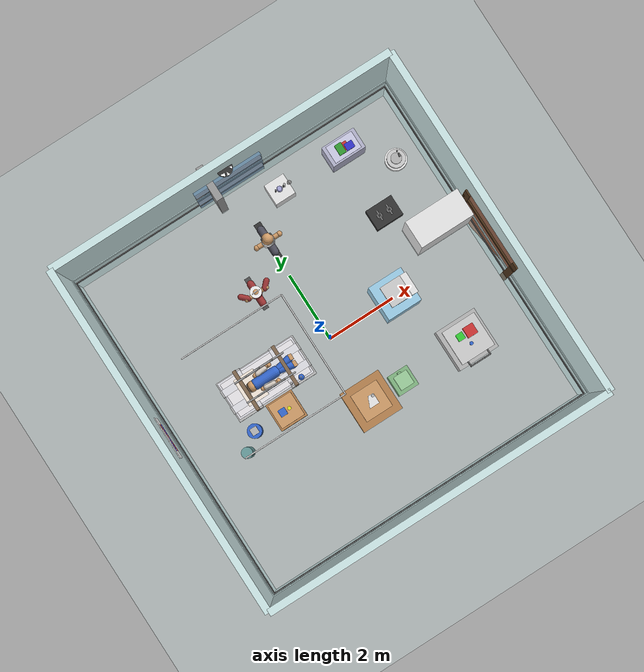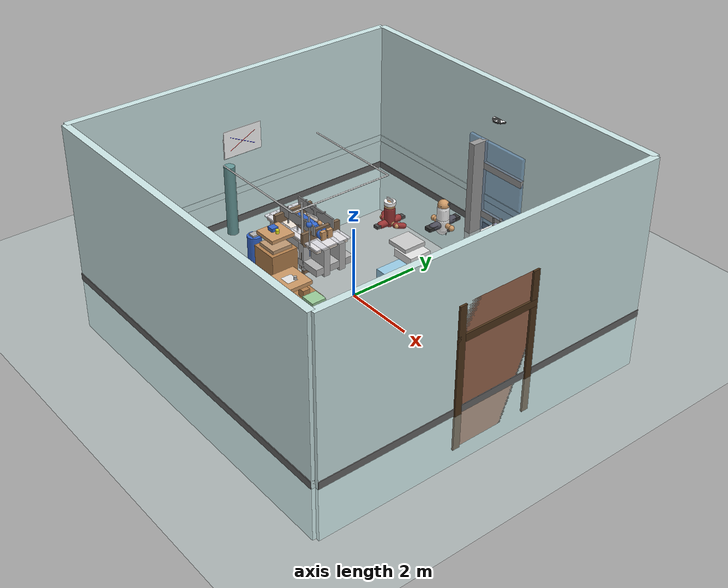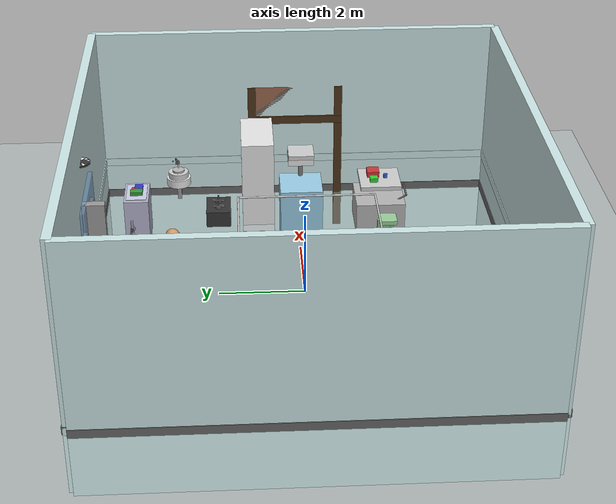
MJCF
<mujoco model="hospital">
  <option timestep="0.005" integrator="RK4"/>

  <visual>
    <headlight diffuse="0.6 0.6 0.6" ambient="0.3 0.3 0.3" specular="0 0 0"/>
    <rgba haze="0.15 0.25 0.35 1"/>
    <global azimuth="120" elevation="-20"/>
  </visual>

  <default>
    <geom rgba=".8 .9 .9 1"/>
    <default class="wall">
      <geom rgba=".7 .7 .7 1"/>
    </default>
  </default>

  <asset>
    <texture type="skybox" builtin="gradient" rgb1="0.9 0.95 1" rgb2="0.6 0.8 1" width="256" height="256"/>
    <texture name="floor_tex" type="2d" builtin="checker" rgb1=".9 .9 .9" rgb2=".8 .8 .8" width="512" height="512" mark="edge" markrgb=".5 .5 .5"/>
    <texture name="wood_tex" type="cube" builtin="flat" rgb1=".5 .4 .3" width="100" height="100"/>
    <texture name="metal_tex" type="cube" builtin="flat" rgb1=".8 .8 .8" width="100" height="100"/>

    <material name="floor_mat" texture="floor_tex" texrepeat="5 5" specular="0.1" shininess="0.2"/>
    <material name="wall_mat" rgba=".92 .96 .94 1" specular="0.1" shininess="0.1"/>
    <material name="wood_mat" texture="wood_tex" specular="0.2" shininess="0.3"/>
    <material name="metal_mat" texture="metal_tex" specular="0.8" shininess="0.8"/>
  </asset>

  <worldbody>
    <!-- 光源 -->
    <!-- 主环境光（暖色） -->
    <light pos="0 5 5" dir="0 -1 -1" diffuse="1 0.98 0.95" castshadow="false"/>
    <!-- 补光（冷色） -->
    <light pos="5 0 5" dir="-1 0 -1" diffuse="0.8 0.85 0.9" castshadow="false"/>
    <light pos="-5 0 5" dir="1 0 -1" diffuse="0.8 0.85 0.9" castshadow="false"/>
    <!-- 顶光 -->
    <light pos="0 0 5" dir="0 0 -1" diffuse="0.6 0.6 0.6" castshadow="false"/>
    <!-- 检查灯（聚光灯效果，照向病床） -->
    <light pos="-2 0 4" dir="0 0 -1" diffuse="0.8 0.8 0.7" castshadow="true" cutoff="45"/>

    <!-- 地面 -->
    <geom type="plane" size="10 10 0.1" material="floor_mat"/>

    <!-- 墙壁 -->
    <geom type="box" size="5 0.1 3" pos="0 -5 1.5" material="wall_mat"/>
    <geom type="box" size="5 0.1 3" pos="0 5 1.5" material="wall_mat"/>
    <geom type="box" size="0.1 5 3" pos="-5 0 1.5" material="wall_mat"/>
    <geom type="box" size="0.1 5 3" pos="5 0 1.5" material="wall_mat"/>

    <!-- 墙面防撞条 -->
    <geom type="box" size="5 0.02 0.1" pos="0 -4.9 1" material="wood_mat"/>
    <geom type="box" size="5 0.02 0.1" pos="0 4.9 1" material="wood_mat"/>
    <geom type="box" size="0.02 5 0.1" pos="-4.9 0 1" material="wood_mat"/>
    <geom type="box" size="0.02 5 0.1" pos="4.9 0 1" material="wood_mat"/>

    <!-- 挂钟 -->
    <body pos="0 4.9 3.5">
       <geom type="cylinder" size="0.2 0.02" axis="0 1 0" rgba="1 1 1 1"/>
       <geom type="cylinder" size="0.22 0.02" axis="0 1 0" pos="0 0.01 0" rgba=".2 .2 .2 1"/>
       <!-- 指针 -->
       <geom type="capsule" size="0.01" fromto="0 0.03 0  0 0.03 0.15" rgba="0 0 0 1"/>
       <geom type="capsule" size="0.01" fromto="0 0.03 0  0.1 0.03 0" rgba="0 0 0 1"/>
    </body>

    <!-- 医用白板/图表 -->
    <body pos="-4.9 0 2.5">
       <geom type="box" size="0.02 0.6 0.4" rgba="1 1 1 1"/>
       <geom type="box" size="0.01 0.62 0.42" pos="-0.01 0 0" rgba=".8 .8 .8 1"/>
       <!-- 简单的图表线条 -->
       <geom type="capsule" size="0.005" fromto="0.03 -0.4 0.2  0.03 0.4 -0.2" rgba="0 0 1 1"/>
       <geom type="capsule" size="0.005" fromto="0.03 -0.4 -0.2  0.03 0.4 0.2" rgba="1 0 0 1"/>
    </body>

    <!-- 踢脚线 -->
    <geom type="box" size="5 0.12 0.1" pos="0 -5 0.1" material="metal_mat" rgba=".4 .4 .4 1"/>
    <geom type="box" size="5 0.12 0.1" pos="0 5 0.1" material="metal_mat" rgba=".4 .4 .4 1"/>
    <geom type="box" size="0.12 5 0.1" pos="-5 0 0.1" material="metal_mat" rgba=".4 .4 .4 1"/>
    <geom type="box" size="0.12 5 0.1" pos="5 0 0.1" material="metal_mat" rgba=".4 .4 .4 1"/>
    <geom type="box" size="0.1 1 2" pos="5 0 1" material="wood_mat" rgba=".6 .4 .3 1"/>
    <!-- 门框 -->
    <geom type="box" size="0.15 0.1 2" pos="5 1.1 1" material="wood_mat" rgba=".3 .2 .1 1"/>
    <geom type="box" size="0.15 0.1 2" pos="5 -1.1 1" material="wood_mat" rgba=".3 .2 .1 1"/>
    <geom type="box" size="0.15 1.2 0.1" pos="5 0 2.1" material="wood_mat" rgba=".3 .2 .1 1"/>
    <!-- 窗户 -->
    <geom type="box" size="1 0.1 1.5" pos="0 4.9 1.25" rgba=".4 .6 .8 0.5"/>
    <geom type="box" size="0.1 0.5 1.5" pos="-0.5 4.9 1.25" material="metal_mat" rgba=".6 .6 .6 1"/>
    <geom type="box" size="1 0.1 0.1" pos="0 4.9 0.5" material="metal_mat" rgba=".6 .6 .6 1"/>
    <geom type="box" size="1 0.1 0.1" pos="0 4.9 2" material="metal_mat" rgba=".6 .6 .6 1"/>

    <!-- 隔帘轨道 -->
    <geom type="capsule" size="0.02" fromto="-3.5 -1.5 2.8  -0.5 -1.5 2.8" material="metal_mat" rgba=".8 .8 .8 1"/>
    <geom type="capsule" size="0.02" fromto="-0.5 -1.5 2.8  -0.5 1.5 2.8" material="metal_mat" rgba=".8 .8 .8 1"/>
    <geom type="capsule" size="0.02" fromto="-0.5 1.5 2.8  -3.5 1.5 2.8" material="metal_mat" rgba=".8 .8 .8 1"/>
    <!-- 隔帘（收起状态） -->
    <geom type="cylinder" size="0.15 1" pos="-3.4 -1.4 1.8" rgba=".4 .6 .6 1"/>

    <!-- 病床（精细化模型） -->
    <body pos="-2 0 0.5">
      <!-- 床架 -->
      <geom type="box" size="1.2 0.6 0.1" rgba=".7 .7 .7 1"/>
      <geom type="box" size="0.1 0.6 0.4" pos="-0.55 0 0.2" rgba=".7 .7 .7 1"/>
      <geom type="box" size="0.1 0.6 0.4" pos="0.55 0 0.2" rgba=".7 .7 .7 1"/>
      <geom type="box" size="1.2 0.1 0.4" pos="0 -0.25 0.2" rgba=".7 .7 .7 1"/>
      <geom type="box" size="1.2 0.1 0.4" pos="0 0.25 0.2" rgba=".7 .7 .7 1"/>
      <!-- 床垫 -->
      <geom type="box" size="1.1 0.5 0.05" pos="0 0 0.55" rgba=".9 0.85 0.8 1"/>
      <!-- 枕头 -->
      <geom type="box" size="0.3 0.4 0.05" pos="-0.45 0 0.6" rgba=".95 0.9 0.85 1"/>
      <!-- 床单 -->
      <geom type="box" size="1.15 0.55 0.02" pos="0 0 0.62" rgba="0.95 0.95 0.98 0.8"/>
      <!-- 左侧护栏 -->
      <geom type="cylinder" size="0.02 0.4" pos="-0.4 0.3 0.75" material="metal_mat" rgba=".6 .6 .6 1"/>
      <geom type="cylinder" size="0.02 0.4" pos="0 0.3 0.75" material="metal_mat" rgba=".6 .6 .6 1"/>
      <geom type="cylinder" size="0.02 0.4" pos="0.4 0.3 0.75" material="metal_mat" rgba=".6 .6 .6 1"/>
      <geom type="box" size="0.35 0.02 0.15" pos="-0.4 0.3 0.95" material="metal_mat" rgba=".6 .6 .6 1"/>
      <geom type="box" size="0.35 0.02 0.15" pos="0 0.3 0.95" material="metal_mat" rgba=".6 .6 .6 1"/>
      <geom type="box" size="0.35 0.02 0.15" pos="0.4 0.3 0.95" material="metal_mat" rgba=".6 .6 .6 1"/>
      <!-- 右侧护栏 -->
      <geom type="cylinder" size="0.02 0.4" pos="-0.4 -0.3 0.75" material="metal_mat" rgba=".6 .6 .6 1"/>
      <geom type="cylinder" size="0.02 0.4" pos="0 -0.3 0.75" material="metal_mat" rgba=".6 .6 .6 1"/>
      <geom type="cylinder" size="0.02 0.4" pos="0.4 -0.3 0.75" material="metal_mat" rgba=".6 .6 .6 1"/>
      <geom type="box" size="0.35 0.02 0.15" pos="-0.4 -0.3 0.95" material="metal_mat" rgba=".6 .6 .6 1"/>
      <geom type="box" size="0.35 0.02 0.15" pos="0 -0.3 0.95" material="metal_mat" rgba=".6 .6 .6 1"/>
      <geom type="box" size="0.35 0.02 0.15" pos="0.4 -0.3 0.95" material="metal_mat" rgba=".6 .6 .6 1"/>
      <!-- 床头板 -->
      <geom type="box" size="0.05 0.6 0.6" pos="-0.6 0 0.3" rgba=".5 .4 .3 1"/>
      <!-- 床尾板 -->
      <geom type="box" size="0.05 0.6 0.6" pos="0.6 0 0.3" rgba=".5 .4 .3 1"/>
      <!-- 脚轮 -->
      <geom type="cylinder" size="0.05 0.03" pos="-0.5 0.25 0.015" rgba=".3 .3 .3 1"/>
      <geom type="cylinder" size="0.05 0.03" pos="-0.5 -0.25 0.015" rgba=".3 .3 .3 1"/>
      <geom type="cylinder" size="0.05 0.03" pos="0.5 0.25 0.015" rgba=".3 .3 .3 1"/>
      <geom type="cylinder" size="0.05 0.03" pos="0.5 -0.25 0.015" rgba=".3 .3 .3 1"/>
      <!-- 角度调节手柄 -->
      <geom type="cylinder" size="0.03 0.15" pos="0.55 0.15 0.1" rgba=".4 .4 .4 1"/>
      <geom type="box" size="0.02 0.1 0.02" pos="0.55 0.25 0.1" rgba=".3 .3 .3 1"/>
      <!-- 病历卡夹 -->
      <geom type="box" size="0.02 0.15 0.2" pos="0.66 0 0.3" rgba=".9 .9 .9 1"/>
      <geom type="box" size="0.01 0.12 0.15" pos="0.67 0 0.3" rgba="1 1 1 1"/>
    </body>

    <!-- 床头柜 -->
    <body pos="-2 -1 0.5">
      <geom type="box" size="0.4 0.4 0.4" material="wood_mat" rgba=".7 .5 .3 1"/>
      <geom type="box" size="0.35 0.35 0.05" pos="0 0 0.8" material="wood_mat" rgba=".8 .6 .4 1"/>
      <!-- 抽屉 -->
      <geom type="box" size="0.3 0.3 0.1" pos="0 0 0.4" material="wood_mat" rgba=".75 .6 .45 1"/>
      <geom type="box" size="0.3 0.3 0.1" pos="0 0 0.2" material="wood_mat" rgba=".75 .6 .45 1"/>
      <!-- 物品 -->
      <geom type="cylinder" size="0.05 0.1" pos="0.1 0 0.85" rgba=".9 .9 .1 1"/>
      <geom type="box" size="0.1 0.1 0.1" pos="-0.1 0 0.85" rgba=".2 .4 .8 1"/>
    </body>

    <!-- 输液架 -->
    <body pos="-1.5 -0.5 0">
      <geom type="cylinder" size="0.03 1.5" pos="0 0 0.75" material="metal_mat" rgba=".7 .7 .7 1"/>
      <geom type="cylinder" size="0.02 0.5" pos="0.3 0 1.5" material="metal_mat" rgba=".7 .7 .7 1"/>
      <geom type="sphere" size="0.08" pos="0.3 0 1.75" rgba=".2 .4 .8 1"/>
      <geom type="cylinder" size="0.01 0.5" pos="0.3 0 1.3" rgba=".2 .4 .8 0.5"/>
    </body>

    <!-- 氧气罐 -->
    <body pos="-3 -1 0">
      <geom type="cylinder" size="0.2 0.5" pos="0 0 0.25" rgba=".2 .4 .8 1"/>
      <geom type="cylinder" size="0.15 0.1" pos="0 0 0.6" rgba=".7 .7 .7 1"/>
      <geom type="box" size="0.1 0.1 0.1" pos="0 0 0.7" rgba=".7 .7 .7 1"/>
    </body>

    <!-- 医疗设备 -->
    <body pos="2 0 1">
      <!-- 设备主体 -->
      <geom type="box" size="0.5 0.5 0.8" rgba=".6 .8 .9 1"/>
      <!-- 显示屏支架 -->
      <geom type="cylinder" size="0.05 0.3" pos="0.2 0 1.2" rgba=".5 .5 .5 1"/>
      <!-- 显示屏 -->
      <geom type="box" size="0.3 0.3 0.1" pos="0.2 0 1.4" rgba=".9 .9 .9 1"/>
      <geom type="box" size="0.25 0.25 0.01" pos="0.2 0 1.45" rgba=".1 .1 .1 1"/>
      <!-- 控制面板 -->
      <geom type="box" size="0.3 0.3 0.05" pos="0 0 1.6" rgba=".8 .8 .8 1"/>
      <!-- 按钮 -->
      <geom type="sphere" size="0.02" pos="-0.1 0.1 1.63" rgba=".2 .8 .2 1"/>
      <geom type="sphere" size="0.02" pos="0 0.1 1.63" rgba=".8 .2 .2 1"/>
      <geom type="sphere" size="0.02" pos="0.1 0.1 1.63" rgba=".2 .2 .8 1"/>
      <geom type="sphere" size="0.02" pos="-0.1 0 1.63" rgba=".8 .8 .2 1"/>
      <geom type="sphere" size="0.02" pos="0 0 1.63" rgba=".8 .2 .8 1"/>
      <geom type="sphere" size="0.02" pos="0.1 0 1.63" rgba=".2 .8 .8 1"/>
      <!-- 连接线 -->
      <geom type="capsule" size="0.01" fromto="0.2 0 1.45  0.1 0 1.58" rgba=".2 .2 .2 1"/>
    </body>

    <!-- 医疗推车 -->
    <body pos="3 -2 0.5">
      <!-- 推车主体 -->
      <geom type="box" size="0.6 0.6 0.4" material="metal_mat" rgba=".7 .7 .7 1"/>
      <!--把手-->
      <geom type="capsule" size="0.02" fromto="-0.3 -0.65 0.5  0.3 -0.65 0.5" material="metal_mat" rgba=".4 .4 .4 1"/>
      <geom type="capsule" size="0.02" fromto="-0.3 -0.65 0.5  -0.3 -0.3 0.3" material="metal_mat" rgba=".4 .4 .4 1"/>
      <geom type="capsule" size="0.02" fromto="0.3 -0.65 0.5  0.3 -0.3 0.3" material="metal_mat" rgba=".4 .4 .4 1"/>
      <!-- 轮子 -->
      <geom type="cylinder" size="0.08 0.02" pos="0.2 0.2 0.02" rgba=".3 .3 .3 1"/>
      <geom type="cylinder" size="0.08 0.02" pos="0.2 -0.2 0.02" rgba=".3 .3 .3 1"/>
      <geom type="cylinder" size="0.08 0.02" pos="-0.2 0.2 0.02" rgba=".3 .3 .3 1"/>
      <geom type="cylinder" size="0.08 0.02" pos="-0.2 -0.2 0.02" rgba=".3 .3 .3 1"/>
      <!-- 托盘 -->
      <geom type="box" size="0.5 0.5 0.05" pos="0 0 0.8" material="metal_mat" rgba=".8 .8 .8 1"/>
      <!-- 物品 -->
      <geom type="box" size="0.15 0.15 0.15" pos="0.15 0.15 0.85" rgba=".8 .2 .2 1"/>
      <geom type="box" size="0.1 0.1 0.1" pos="-0.15 0.15 0.85" rgba=".2 .8 .2 1"/>
      <geom type="cylinder" size="0.05 0.1" pos="0 -0.15 0.85" rgba=".2 .4 .8 1"/>
    </body>

    <!-- 桌子 -->
    <body pos="0 -2 0.5">
      <geom type="box" size="0.6 0.6 0.4" material="wood_mat" rgba=".7 .5 .3 1"/>
      <geom type="box" size="0.1 0.1 0.4" pos="0.25 0.25 0.2" material="wood_mat" rgba=".7 .5 .3 1"/>
      <geom type="box" size="0.1 0.1 0.4" pos="0.25 -0.25 0.2" material="wood_mat" rgba=".7 .5 .3 1"/>
      <geom type="box" size="0.1 0.1 0.4" pos="-0.25 0.25 0.2" material="wood_mat" rgba=".7 .5 .3 1"/>
      <geom type="box" size="0.1 0.1 0.4" pos="-0.25 -0.25 0.2" material="wood_mat" rgba=".7 .5 .3 1"/>
      <geom type="box" size="0.4 0.4 0.05" pos="0 0 0.8" material="wood_mat" rgba=".8 .6 .4 1"/>
      <!-- 物品 -->
      <geom type="box" size="0.15 0.15 0.02" pos="0 0 0.83" rgba=".9 .9 .9 1"/>
      <geom type="cylinder" size="0.04 0.08" pos="0.1 0.1 0.85" rgba=".7 .7 .7 1"/>
    </body>

    <!-- 椅子（改进模型） -->
    <body pos="1 -2 0.5">
      <geom type="box" size="0.3 0.3 0.4" rgba=".5 .7 .5 1"/>
      <geom type="box" size="0.05 0.05 0.4" pos="0.1 0.1 0.2" rgba=".5 .7 .5 1"/>
      <geom type="box" size="0.05 0.05 0.4" pos="0.1 -0.1 0.2" rgba=".5 .7 .5 1"/>
      <geom type="box" size="0.05 0.05 0.4" pos="-0.1 0.1 0.2" rgba=".5 .7 .5 1"/>
      <geom type="box" size="0.05 0.05 0.4" pos="-0.1 -0.1 0.2" rgba=".5 .7 .5 1"/>
      <!-- 座位 -->
      <geom type="box" size="0.2 0.2 0.05" pos="0 0 0.8" rgba=".6 .8 .6 1"/>
      <!-- 靠背 -->
      <geom type="box" size="0.05 0.15 0.2" pos="0 0.1 0.6" rgba=".5 .7 .5 1"/>
    </body>

    <!-- 洗手盆 -->
    <body pos="4 3 0.5">
      <geom type="cylinder" size="0.3 0.1" pos="0 0 0.4" rgba=".9 .9 .9 1"/>
      <geom type="cylinder" size="0.25 0.1" pos="0 0 0.55" rgba=".8 .8 .8 1"/>
      <geom type="cylinder" size="0.15 0.1" pos="0 0 0.6" rgba=".7 .7 .7 1"/>
      <geom type="box" size="0.05 0.05 0.4" pos="0.15 0 0.2" material="metal_mat" rgba=".6 .6 .6 1"/>
      <!-- 水龙头 -->
      <geom type="cylinder" size="0.02 0.1" pos="0.1 0 0.75" material="metal_mat" rgba=".5 .5 .5 1"/>
      <geom type="cylinder" size="0.03 0.05" pos="0.1 0 0.85" material="metal_mat" rgba=".4 .4 .4 1"/>
      <geom type="cylinder" size="0.02 0.08" pos="0.1 0.05 0.88" material="metal_mat" rgba=".4 .4 .4 1"/>
      <geom type="sphere" size="0.02" pos="0.1 0.13 0.88" material="metal_mat" rgba=".3 .3 .3 1"/>
    </body>

    <!-- 医疗柜 -->
    <body pos="4 1 1">
      <geom type="box" size="0.8 0.4 1.2" material="metal_mat" rgba=".9 .9 .9 1"/>
      <geom type="box" size="0.75 0.35 0.5" pos="0 0 0.35" rgba=".85 .85 .85 1"/>
      <geom type="box" size="0.75 0.35 0.5" pos="0 0 -0.35" rgba=".85 .85 .85 1"/>
      <!-- 柜门把手 -->
      <geom type="cylinder" size="0.02 0.05" pos="0.2 0.18 0.35" material="metal_mat" rgba=".5 .5 .5 1"/>
      <geom type="cylinder" size="0.02 0.05" pos="0.2 0.18 -0.35" material="metal_mat" rgba=".5 .5 .5 1"/>
      <!-- 药品瓶 -->
      <geom type="cylinder" size="0.05 0.1" pos="-0.2 0 0.45" rgba=".2 .6 .2 0.8"/>
      <geom type="cylinder" size="0.04 0.08" pos="0 0 0.45" rgba=".8 .2 .2 0.8"/>
      <geom type="cylinder" size="0.05 0.12" pos="0.2 0 0.45" rgba=".2 .2 .8 0.8"/>
    </body>

    <!-- 除颤仪 -->
    <body pos="3 2 0.5">
      <geom type="box" size="0.4 0.3 0.2" rgba=".2 .2 .2 1"/>
      <geom type="box" size="0.35 0.25 0.05" pos="0 0 0.1" rgba=".8 .8 .8 1"/>
      <!-- 屏幕 -->
      <geom type="box" size="0.25 0.15 0.02" pos="0 0 0.13" rgba=".2 .3 .4 1"/>
      <!-- 除颤电极板 -->
      <geom type="cylinder" size="0.08 0.03" pos="-0.15 0 0.22" rgba=".4 .4 .4 1"/>
      <geom type="cylinder" size="0.08 0.03" pos="0.15 0 0.22" rgba=".4 .4 .4 1"/>
      <geom type="cylinder" size="0.02 0.2" pos="-0.15 0 0.18" rgba=".3 .3 .3 1"/>
      <geom type="cylinder" size="0.02 0.2" pos="0.15 0 0.18" rgba=".3 .3 .3 1"/>
      <!-- 握把 -->
      <geom type="box" size="0.02 0.15 0.02" pos="-0.15 0 0.25" rgba=".5 .5 .5 1"/>
      <geom type="box" size="0.02 0.15 0.02" pos="0.15 0 0.25" rgba=".5 .5 .5 1"/>
      <!-- 警示灯 -->
      <geom type="sphere" size="0.03" pos="0 0.1 0.12" rgba=".8 .2 .2 1"/>
      <!-- 脚轮 -->
      <geom type="cylinder" size="0.04 0.02" pos="0.12 0.1 0.01" rgba=".3 .3 .3 1"/>
      <geom type="cylinder" size="0.04 0.02" pos="0.12 -0.1 0.01" rgba=".3 .3 .3 1"/>
      <geom type="cylinder" size="0.04 0.02" pos="-0.12 0.1 0.01" rgba=".3 .3 .3 1"/>
      <geom type="cylinder" size="0.04 0.02" pos="-0.12 -0.1 0.01" rgba=".3 .3 .3 1"/>
    </body>

    <!-- 呼吸机 -->
    <body pos="1 4 0.5">
      <geom type="box" size="0.3 0.3 0.4" rgba=".9 .9 .9 1"/>
      <!-- 显示屏 -->
      <geom type="box" size="0.2 0.15 0.02" pos="0 0 0.22" rgba=".1 .1 .1 1"/>
      <geom type="box" size="0.18 0.13 0.01" pos="0 0 0.24" rgba=".2 .5 .2 0.9"/>
      <!-- 湿化器 -->
      <geom type="cylinder" size="0.08 0.1" pos="0 0 0.4" rgba=".6 .6 .8 1"/>
      <geom type="cylinder" size="0.06 0.08" pos="0 0 0.52" rgba=".7 .7 .9 0.8"/>
      <!-- 管路 -->
      <geom type="cylinder" size="0.03 0.3" pos="0.15 0 0.55" rgba=".6 .6 .6 0.6"/>
      <!-- 面罩 -->
      <geom type="sphere" size="0.06" pos="0.3 0 0.55" rgba=".5 .5 .5 0.7"/>
      <!-- 支架 -->
      <geom type="cylinder" size="0.02 0.5" pos="-0.12 0 0.25" rgba=".4 .4 .4 1"/>
      <geom type="cylinder" size="0.02 0.4" pos="0.12 0 0.25" rgba=".4 .4 .4 1"/>
    </body>

    <!-- 墙面呼叫器 -->
    <body pos="-3.5 4.95 1.2">
      <geom type="box" size="0.1 0.02 0.15" rgba=".9 .9 .9 1"/>
      <geom type="box" size="0.08 0.01 0.08" pos="0 0.01 0.03" rgba=".2 .8 .2 1"/>
      <geom type="box" size="0.08 0.01 0.03" pos="0 0.01 -0.04" rgba=".8 .2 .2 1"/>
    </body>

    <!-- 墙面指示牌 -->
    <body pos="2 4.95 2">
      <geom type="box" size="0.3 0.02 0.15" rgba=".2 .6 .8 1"/>
      <geom type="box" size="0.25 0.01 0.1" pos="0 0.01 0" rgba=".95 .95 .95 0.9"/>
    </body>

    <!-- 药品推车 -->
    <body pos="3 4 0.5">
      <geom type="box" size="0.5 0.3 0.6" rgba=".7 .7 .8 1"/>
      <!-- 抽屉 -->
      <geom type="box" size="0.45 0.25 0.1" pos="0 0 0.25" rgba=".75 .75 .85 1"/>
      <geom type="box" size="0.45 0.25 0.1" pos="0 0 0.1" rgba=".75 .75 .85 1"/>
      <geom type="box" size="0.45 0.25 0.1" pos="0 0 -0.05" rgba=".75 .75 .85 1"/>
      <!-- 抽屉把手 -->
      <geom type="box" size="0.08 0.02 0.02" pos="0 0.13 0.25" rgba=".5 .5 .5 1"/>
      <geom type="box" size="0.08 0.02 0.02" pos="0 0.13 0.1" rgba=".5 .5 .5 1"/>
      <geom type="box" size="0.08 0.02 0.02" pos="0 0.13 -0.05" rgba=".5 .5 .5 1"/>
      <!-- 托盘 -->
      <geom type="box" size="0.4 0.25 0.02" pos="0 0 0.6" rgba=".8 .8 .9 1"/>
      <!-- 药品盒 -->
      <geom type="box" size="0.1 0.15 0.08" pos="-0.1 0 0.63" rgba=".2 .6 .2 1"/>
      <geom type="box" size="0.08 0.12 0.06" pos="0.05 0 0.63" rgba=".8 .2 .2 1"/>
      <geom type="box" size="0.12 0.1 0.07" pos="0.15 -0.05 0.63" rgba=".2 .2 .8 1"/>
      <!-- 轮子 -->
      <geom type="cylinder" size="0.05 0.02" pos="0.15 0.12 0.01" rgba=".3 .3 .3 1"/>
      <geom type="cylinder" size="0.05 0.02" pos="0.15 -0.12 0.01" rgba=".3 .3 .3 1"/>
      <geom type="cylinder" size="0.05 0.02" pos="-0.15 0.12 0.01" rgba=".3 .3 .3 1"/>
      <geom type="cylinder" size="0.05 0.02" pos="-0.15 -0.12 0.01" rgba=".3 .3 .3 1"/>
      <!-- 手柄 -->
      <geom type="cylinder" size="0.02 0.15" pos="0 0.15 0.35" rgba=".4 .4 .4 1"/>
      <geom type="box" size="0.02 0.08 0.02" pos="0 0.19 0.35" rgba=".3 .3 .3 1"/>
    </body>

    <!-- 改进的护士模型 -->
    <body pos="-1 2 1.5">
      <joint type="ball"/>
      <!-- 头部 -->
      <geom type="sphere" size="0.15" pos="0 0 0" rgba=".8 .6 .4 1"/>
      <!-- 眼睛 -->
      <geom type="sphere" size="0.015" pos="0.05 -0.13 0.02" rgba="0 0 0 1"/>
      <geom type="sphere" size="0.015" pos="-0.05 -0.13 0.02" rgba="0 0 0 1"/>
      <!-- 护士帽 -->
      <geom type="cylinder" size="0.16 0.05" pos="0 0 0.08" rgba=".95 .95 .95 1"/>
      <geom type="box" size="0.12 0.01 0.1" pos="0 0 0.12" rgba=".95 .95 .95 1"/>
      <!-- 躯干 -->
      <geom type="capsule" size="0.15" fromto="0 0 -0.1  0 0 -0.5" rgba=".6 .2 .2 1"/>
      <body pos="0 0 -0.5">
        <joint axis="0 1 0"/>
        <joint axis="1 0 0"/>
        <!-- 左手 -->
        <geom type="capsule" size="0.06" fromto="0 0 0  0.25 0 0" rgba=".8 .6 .4 1"/>
        <geom type="sphere" size="0.07" pos="0.3 0 0" rgba=".8 .6 .4 1"/>
        <!-- 右手 -->
        <geom type="capsule" size="0.06" fromto="0 0 0  -0.25 0 0" rgba=".8 .6 .4 1"/>
        <geom type="sphere" size="0.07" pos="-0.3 0 0" rgba=".8 .6 .4 1"/>
        <!-- 左手臂 -->
        <geom type="capsule" size="0.08" fromto="0.25 0 0  0.4 0.15 0" rgba=".6 .2 .2 1"/>
        <!-- 右手臂 -->
        <geom type="capsule" size="0.08" fromto="-0.25 0 0  -0.4 0.15 0" rgba=".6 .2 .2 1"/>
        <geom type="capsule" size="0.1" fromto="0 0 0  0 0.3 0" rgba=".6 .2 .2 1"/>
        <geom type="capsule" size="0.1" fromto="0 0 0  0 -0.3 0" rgba=".6 .2 .2 1"/>
        <!-- 鞋子 -->
        <geom type="box" size="0.08 0.12 0.04" pos="0 0.36 0" rgba=".3 .3 .3 1"/>
        <geom type="box" size="0.08 0.12 0.04" pos="0 -0.36 0" rgba=".3 .3 .3 1"/>
      </body>
    </body>

    <!-- 改进的患者模型（平躺） -->
    <body pos="-2 0 1.25">
      <joint type="free"/>
      <!-- 头部 -->
      <geom type="sphere" size="0.15" pos="-0.4 0 0" rgba=".8 .6 .4 1"/>
      <!-- 眼睛 -->
      <geom type="sphere" size="0.015" pos="-0.35 0.05 0.12" rgba="0 0 0 1"/>
      <geom type="sphere" size="0.015" pos="-0.35 -0.05 0.12" rgba="0 0 0 1"/>
      <!-- 头发 -->
      <geom type="sphere" size="0.14" pos="-0.45 0 -0.02" rgba=".3 .3 .3 0.5"/>
      <!-- 躯干 -->
      <geom type="capsule" size="0.15" fromto="-0.3 0 0  0.3 0 0" rgba=".2 .4 .8 1"/>
      <!-- 左手 -->
      <geom type="capsule" size="0.06" fromto="-0.2 0.2 0  0.2 0.25 0" rgba=".8 .6 .4 1"/>
      <geom type="sphere" size="0.07" pos="0.25 0.25 0" rgba=".8 .6 .4 1"/>
      <!-- 右手 -->
      <geom type="capsule" size="0.06" fromto="-0.2 -0.2 0  0.2 -0.25 0" rgba=".8 .6 .4 1"/>
      <geom type="sphere" size="0.07" pos="0.25 -0.25 0" rgba=".8 .6 .4 1"/>
      <geom type="capsule" size="0.1" fromto="0.3 0 0  0.8 0.1 0" rgba=".2 .4 .8 1"/>
      <geom type="capsule" size="0.1" fromto="0.3 0 0  0.8 -0.1 0" rgba=".2 .4 .8 1"/>
      <geom type="box" size="0.05 0.08 0.12" pos="0.85 0.1 0.05" rgba=".8 .6 .4 1"/>
      <geom type="box" size="0.05 0.08 0.12" pos="0.85 -0.1 0.05" rgba=".8 .6 .4 1"/>
      <!-- 病号服细节 -->
      <geom type="capsule" size="0.08" fromto="-0.1 0.2 0.05  0.1 0.22 0.05" rgba=".9 .9 .9 0.8"/>
      <geom type="capsule" size="0.08" fromto="-0.1 -0.2 0.05  0.1 -0.22 0.05" rgba=".9 .9 .9 0.8"/>
    </body>

    <!-- 医生模型 -->
    <body pos="0 3 1.6">
      <joint type="ball"/>
      <!-- 头部 -->
      <geom type="sphere" size="0.16" pos="0 0 0" rgba=".8 .6 .4 1"/>
      <!-- 眼睛 -->
      <geom type="sphere" size="0.015" pos="0.06 -0.14 0.03" rgba="0 0 0 1"/>
      <geom type="sphere" size="0.015" pos="-0.06 -0.14 0.03" rgba="0 0 0 1"/>
      <!-- 听诊器挂耳部 -->
      <geom type="sphere" size="0.04" pos="0.12 0.06 0.05" rgba=".3 .3 .3 1"/>
      <geom type="sphere" size="0.04" pos="-0.12 0.06 0.05" rgba=".3 .3 .3 1"/>
      <!-- 躯干 -->
      <geom type="capsule" size="0.17" fromto="0 0 -0.1  0 0 -0.55" rgba=".95 .95 .95 1"/>
      <!-- 白大褂下摆 -->
      <geom type="capsule" size="0.18" fromto="0 0 -0.45  0 0 -0.7" rgba=".9 .9 .9 1"/>
      <body pos="0 0 -0.55">
        <joint axis="0 1 0"/>
        <joint axis="1 0 0"/>
        <!-- 左手 -->
        <geom type="capsule" size="0.07" fromto="0 0 0  0.3 0 0" rgba=".8 .6 .4 1"/>
        <geom type="sphere" size="0.08" pos="0.35 0 0" rgba=".8 .6 .4 1"/>
        <!-- 右手 -->
        <geom type="capsule" size="0.07" fromto="0 0 0  -0.3 0 0" rgba=".8 .6 .4 1"/>
        <geom type="sphere" size="0.08" pos="-0.35 0 0" rgba=".8 .6 .4 1"/>
        <!-- 听诊器 -->
        <geom type="sphere" size="0.05" pos="0.25 0 -0.1" rgba=".3 .3 .3 1"/>
        <geom type="cylinder" size="0.01 0.15" pos="0.15 0 -0.15" rgba=".3 .3 .3 1"/>
        <geom type="capsule" size="0.11" fromto="0 0 0  0 0.35 0" rgba=".3 .3 .35 1"/>
        <geom type="capsule" size="0.11" fromto="0 0 0  0 -0.35 0" rgba=".3 .3 .35 1"/>
        <!-- 鞋子 -->
        <geom type="box" size="0.1 0.14 0.05" pos="0 0.4 0" rgba=".2 .2 .2 1"/>
        <geom type="box" size="0.1 0.14 0.05" pos="0 -0.4 0" rgba=".2 .2 .2 1"/>
      </body>
    </body>
  </worldbody>
</mujoco>
